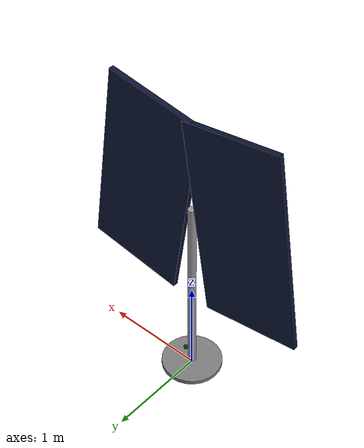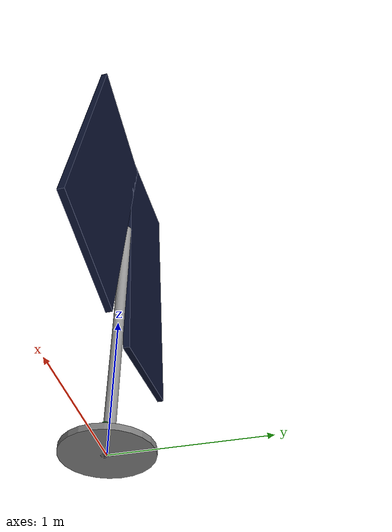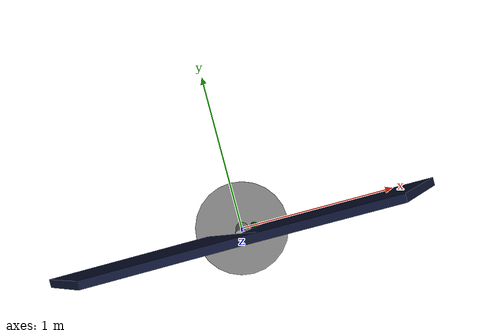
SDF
<?xml version="1.0"?>
<sdf version="1.9">
  <model name="solar_array">
    <static>true</static>

    <link name="body">
      <!-- Mast -->
      <visual name="mast_visual">
        <pose>0 0 1.0 0 0 0</pose>
        <geometry>
          <cylinder>
            <radius>0.04</radius>
            <length>2.0</length>
          </cylinder>
        </geometry>
        <material>
          <ambient>0.5 0.5 0.5 1</ambient>
          <diffuse>0.6 0.6 0.6 1</diffuse>
          <specular>0.3 0.3 0.3 1</specular>
        </material>
      </visual>

      <!-- Left panel -->
      <visual name="panel_left_visual">
        <pose>-0.55 0 2.0 0 0.15 0</pose>
        <geometry>
          <box><size>1.0 0.05 2.0</size></box>
        </geometry>
        <material>
          <ambient>0.02 0.04 0.12 1</ambient>
          <diffuse>0.05 0.08 0.2 1</diffuse>
          <specular>0.3 0.3 0.4 1</specular>
        </material>
      </visual>

      <!-- Right panel -->
      <visual name="panel_right_visual">
        <pose>0.55 0 2.0 0 -0.15 0</pose>
        <geometry>
          <box><size>1.0 0.05 2.0</size></box>
        </geometry>
        <material>
          <ambient>0.02 0.04 0.12 1</ambient>
          <diffuse>0.05 0.08 0.2 1</diffuse>
          <specular>0.3 0.3 0.4 1</specular>
        </material>
      </visual>

      <!-- Base plate -->
      <visual name="base_visual">
        <pose>0 0 0.02 0 0 0</pose>
        <geometry>
          <cylinder>
            <radius>0.3</radius>
            <length>0.04</length>
          </cylinder>
        </geometry>
        <material>
          <ambient>0.4 0.4 0.4 1</ambient>
          <diffuse>0.5 0.5 0.5 1</diffuse>
        </material>
      </visual>

      <collision name="collision_mast">
        <pose>0 0 1.0 0 0 0</pose>
        <geometry>
          <cylinder>
            <radius>0.06</radius>
            <length>2.0</length>
          </cylinder>
        </geometry>
      </collision>
      <collision name="collision_panels">
        <pose>0 0 2.0 0 0 0</pose>
        <geometry>
          <box><size>2.2 0.1 2.0</size></box>
        </geometry>
      </collision>

      <!-- Status LED -->
      <visual name="status_led_visual">
        <pose>0.08 0 0.15 0 0 0</pose>
        <geometry>
          <sphere><radius>0.025</radius></sphere>
        </geometry>
        <material>
          <ambient>0 0.2 0 1</ambient>
          <diffuse>0 0.2 0 1</diffuse>
          <emissive>0 0.3 0 1</emissive>
        </material>
      </visual>
      <light name="status_led_light" type="point">
        <pose>0.1 0 0.15 0 0 0</pose>
        <diffuse>0 1 0 1</diffuse>
        <specular>0 0 0 1</specular>
        <attenuation>
          <range>2</range>
          <constant>1.0</constant>
          <linear>0.5</linear>
          <quadratic>0.3</quadratic>
        </attenuation>
      </light>
    </link>

    <plugin name="status_led" filename="libLedPlugin.so">
      <led_group_name>solar_status</led_group_name>

      <led name="status">
        <visual_name>body/status_led_visual</visual_name>
        <light_name>body/status_led_light</light_name>
        <default_state>
          <color>0 0.2 0 1</color>
          <intensity>0.0</intensity>
        </default_state>
      </led>

      <startup_mode>charging</startup_mode>

      <mode name="charging">
        <step always_on="false">
          <color>0 1 0 1</color>
          <intensity>1.0</intensity>
          <on_time>1.0</on_time>
        </step>
        <step always_on="false">
          <color>0 0.2 0 1</color>
          <intensity>0.0</intensity>
          <on_time>1.0</on_time>
        </step>
      </mode>

      <mode name="full">
        <step always_on="true">
          <color>0 1 0 1</color>
          <intensity>1.0</intensity>
        </step>
      </mode>

      <mode name="critical">
        <step always_on="false">
          <color>1 0 0 1</color>
          <intensity>2.0</intensity>
          <on_time>0.3</on_time>
        </step>
        <step always_on="false">
          <color>0.3 0 0 1</color>
          <intensity>0.0</intensity>
          <on_time>0.3</on_time>
        </step>
      </mode>
    </plugin>
  </model>
</sdf>
